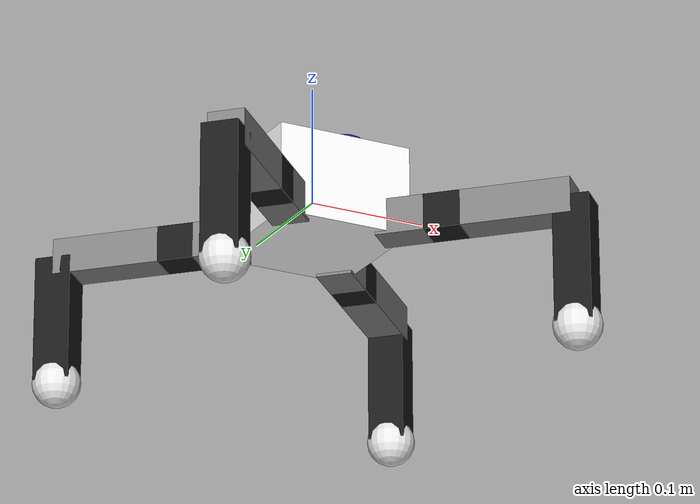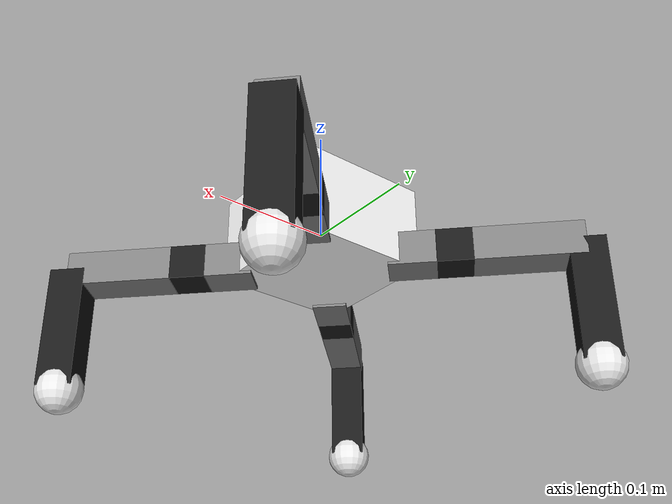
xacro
<?xml version="1.0"?>
<robot name="mekamon"
  xmlns:xacro="http://ros.org/wiki/xacro">

  <!-- units are metres & Kg-->

  <xacro:property name="body_x" value="0.115" />
  <xacro:property name="body_y" value="0.115" />
  <xacro:property name="body_z" value="0.075" />

  <xacro:property name="headradius" value="0.025" />

  <!-- all leg parts can have same width & height, just vary length -->
  <xacro:property name="legwidth" value="0.03" />
  <xacro:property name="legheight" value="0.03" />
  <xacro:property name="hiplength" value="0.04" />
  <!-- from socket to hip joint -->
  <xacro:property name="hiplinklength" value="0.03" />
  <!-- link from hip to thigh -->
  <xacro:property name="thighlength" value="0.09" />
  <!-- from thigh joint to knee joint -->
  <xacro:property name="foreleglength" value="0.105" />
  <!-- from knee joint to foot -->
  <xacro:property name="footradius" value="0.02" />
  <!-- foot sphere -->

  <xacro:property name="pi" value="3.1415" />

  <material name="body">
    <color rgba="1.0 1.0 1.0 1"/>
  </material>

  <material name="head">
    <color rgba="0.1 0.1 0.9 1"/>
  </material>

  <material name="hip">
    <color rgba="0.5 0.5 0.5 1"/>
  </material>

  <material name="hiplink">
    <color rgba="0.1 0.1 0.1 1"/>
  </material>

  <material name="thigh">
    <color rgba="0.5 0.5 0.5 1"/>
  </material>

  <material name="foreleg">
    <color rgba="0.1 0.1 0.1 1"/>
  </material>

  <material name="foot">
    <color rgba="0.9 0.9 0.9 0.9"/>
  </material>

  <!-- Standard moment of inertia tensor for solid sphere -->
  <xacro:macro name="sphere_inertial" params="mass radius">
    <inertial>
      <mass value="${mass}" />
      <inertia ixx="${0.4 * mass * radius * radius}" ixy="0.0" ixz="0.0" iyy="${0.4 * mass * radius * radius}" iyz="0.0" izz="${0.4 * mass * radius * radius}" />
    </inertial>
  </xacro:macro>

  <!-- Standard moment of inertia tensor for solid cuboid -->
  <xacro:macro name="box_inertial" params="mass x y z">
    <inertial>
      <mass value="${mass}" />
      <inertia ixx="${0.0833333 * mass * (y*y + z*z)}" ixy="0.0" ixz="0.0" iyy="${0.0833333 * mass * (x*x + z*z)}" iyz="0.0" izz="${0.0833333 * mass * (x*x + y*y)}" />
    </inertial>
  </xacro:macro>

  <!-- base coordinate frame link is not a physical object -->
  <link name="base_link"/>

  <!-- base link needs a fixed joint to first real link -->
  <joint name="base_link_fixedjoint" type="fixed">
    <parent link="base_link"/>
    <child link="body"/>
    <origin xyz="0.0 0.0 0.0" rpy="0.0 0.0 0.0"/>
  </joint>

  <!-- central body (first real link) -->
  <link name="body">
    <visual>
      <geometry>
        <box size="${body_x} ${body_y} ${body_z}"/>
      </geometry>
      <material name="body"/>
    </visual>
    <collision>
      <geometry>
        <box size="${body_x} ${body_y} ${body_z}"/>
      </geometry>
    </collision>
    <xacro:box_inertial mass="0.5" x="${body_x}" y="${body_y}" z="${body_z}"/>
  </link>

  <!-- Head -->
  <link name="head">
    <visual>
      <geometry>
        <sphere radius="${headradius}"/>
      </geometry>
      <material name="head"/>
    </visual>
    <collision>
      <geometry>
        <sphere radius="${headradius}"/>
      </geometry>
    </collision>
    <xacro:sphere_inertial mass="0.01" radius="${headradius}"/>
  </link>

  <!-- body-to-head static joint -->
  <joint name="body_to_head" type="fixed">
    <parent link="body"/>
    <child link="head"/>
    <origin xyz="0.03 0.00 0.04" />
  </joint>

  <gazebo>
    <plugin name="gazebo_ros_control" filename="libgazebo_ros_control.so">
      <robotNamespace>/mekamon</robotNamespace>
    </plugin>
  </gazebo>

  <!-- Leg builder macro
  arg 'prefix' is link name prefix.
  args 'reflect' used in leg placement. -->
  <xacro:macro name="leg" params="prefix reflect_x reflect_y hipangle">

    <!-- body-to-hip static joint -->
    <joint name="body_to_${prefix}_hip" type="fixed">
      <parent link="body"/>
      <child link="${prefix}_hip"/>
      <!-- Where this joint attaches to the parent link,
      relative to previous joint origin -->
      <origin xyz="${reflect_x*0.04} ${reflect_y*0.04} -0.025" rpy="0 0 ${pi/4 + hipangle*pi/2}"/>
    </joint>

    <!-- Hip, containing servo -->
    <link name="${prefix}_hip">
      <visual>
        <geometry>
          <!--length, width, height-->
          <box size="${hiplength} ${legwidth} ${legheight}"/>
        </geometry>
        <!-- Where we want the link centre to be, relative to the joint? -->
        <origin xyz="${hiplength/2} 0 0" rpy="0 0 0"/>
        <material name="hip"/>
      </visual>
      <collision>
        <!--same as visual geometry -->
        <geometry>
          <box size="${hiplength} ${legwidth} ${legheight}"/>
        </geometry>
        <!--same as visual geometry -->
        <origin xyz="${hiplength/2} 0 0" rpy="0 0 0"/>
      </collision>
      <xacro:box_inertial mass="0.02" x="${hiplength}" y="${legwidth}" z="${legheight}" />
    </link>

    <!-- hip-to-hiplink joint -->
    <joint name="${prefix}_hip_joint" type="revolute">
      <axis xyz="0 0 1"/>
      <limit effort="1000.0" lower="-${pi/3}" upper="${pi/3}" velocity="0.5"/>
      <!-- Where this joint attaches to the parent link,
      relative to previous joint origin -->
      <origin rpy="0 0 0" xyz="${hiplength} 0 0"/>
      <parent link="${prefix}_hip"/>
      <child link="${prefix}_hiplink"/>
    </joint>

    <!-- Hiplink - small passive right-angle link -->
    <link name="${prefix}_hiplink">
      <visual>
        <geometry>
          <box size="${hiplinklength} ${legwidth} ${legheight}"/>
        </geometry>
        <origin xyz="${hiplinklength/2} 0 0" rpy="0 0 0"/>
        <material name="hiplink"/>
      </visual>
      <collision>
        <geometry>
          <box size="${hiplinklength} ${legwidth} ${legheight}"/>
        </geometry>
        <origin xyz="${hiplinklength/2} 0 0" rpy="0 0 0"/>
      </collision>
      <xacro:box_inertial mass="0.01" x="${hiplinklength}" y="${legwidth}" z="${legheight}" />
    </link>

    <!-- hiplink-to-thigh joint -->
    <joint name="${prefix}_hiplink_joint" type="revolute">
      <axis xyz="0 1 0"/>
      <limit effort="1000.0" lower="-1.396" upper="1.484" velocity="0.5"/>
      <!-- Where this joint attaches to the parent link,
      relative to previous joint origin -->
      <origin rpy="0 0 0" xyz="${hiplinklength} 0 0"/>
      <parent link="${prefix}_hiplink"/>
      <child link="${prefix}_thigh"/>
    </joint>

    <!-- Thigh -->
    <link name="${prefix}_thigh">
      <visual>
        <geometry>
          <box size="${thighlength} ${legwidth} ${legheight}"/>
        </geometry>
        <origin xyz="${thighlength/2} 0 0" rpy="0 0 0"/>
        <material name="thigh"/>
      </visual>
      <collision>
        <geometry>
          <box size="${thighlength} ${legwidth} ${legheight}"/>
        </geometry>
        <origin xyz="${thighlength/2} 0 0" rpy="0 0 0"/>
      </collision>
      <xacro:box_inertial mass="0.05" x="${thighlength}" y="${legwidth}" z="${legheight}" />
    </link>

    <!-- Knee, thigh-to-foreleg joint -->
    <joint name="${prefix}_knee_joint" type="revolute">
      <axis xyz="0 1 0"/>
      <limit effort="1000.0" lower="-1.169" upper="1.274" velocity="0.5"/>
      <!-- Where this joint attaches to the parent link,
      relative to previous joint origin -->
      <origin rpy="0 0 0" xyz="${thighlength} 0 0"/>
      <parent link="${prefix}_thigh"/>
      <child link="${prefix}_foreleg"/>
    </joint>

    <!-- Foreleg -->
    <link name="${prefix}_foreleg">
      <visual>
        <geometry>
          <box size="${foreleglength} ${legwidth} ${legheight}"/>
        </geometry>
        <!-- translation of origin is relative to pre-rotation frame,
        so x-trans is done as z-trans-->
        <origin rpy="0 ${pi/2} 0" xyz="0 0 -${foreleglength/2}" />
        <material name="foreleg"/>
      </visual>
      <collision>
        <geometry>
          <box size="${foreleglength} ${legwidth} ${legheight}"/>
        </geometry>
        <origin rpy="0 ${pi/2} 0" xyz="0 0 -${foreleglength/2}" />
      </collision>
      <xacro:box_inertial mass="0.03" x="${foreleglength}" y="${legwidth}" z="${legheight}" />
    </link>

    <!-- Foreleg to Foot static joint -->
    <joint name="${prefix}_ankle" type="fixed">
      <parent link="${prefix}_foreleg"/>
      <child link="${prefix}_foot"/>
      <!-- Where this joint attaches to the parent link,
      relative to previous joint origin -->
      <origin xyz="0 0 -${foreleglength}" rpy="0 0 0"/>
    </joint>

    <!-- Foot -->
    <link name="${prefix}_foot">
      <visual>
        <geometry>
          <sphere radius="${footradius}"/>
        </geometry>
        <origin xyz="0 0 0" rpy="0 0 0"/>
        <material name="foot"/>
      </visual>
      <collision>
        <geometry>
          <sphere radius="${footradius}"/>
        </geometry>
        <origin xyz="0 0 0" rpy="0 0 0"/>
      </collision>
      <xacro:sphere_inertial mass="0.01" radius="${footradius}"/>
    </link>

    <transmission name="${prefix}_hip_joint_trans">
      <type>transmission_interface/SimpleTransmission</type>
      <joint name="${prefix}_hip_joint">
        <hardwareInterface>EffortJointInterface</hardwareInterface>
      </joint>
      <actuator name="${prefix}_hip_joint_motor">
        <mechanicalReduction>1</mechanicalReduction>
      </actuator>
    </transmission>

    <transmission name="${prefix}_hiplink_joint_trans">
      <type>transmission_interface/SimpleTransmission</type>
      <joint name="${prefix}_hiplink_joint">
        <hardwareInterface>EffortJointInterface</hardwareInterface>
      </joint>
      <actuator name="${prefix}_hiplink_joint_motor">
        <mechanicalReduction>1</mechanicalReduction>
      </actuator>
    </transmission>

    <transmission name="${prefix}_knee_joint_trans">
      <type>transmission_interface/SimpleTransmission</type>
      <joint name="${prefix}_knee_joint">
        <hardwareInterface>EffortJointInterface</hardwareInterface>
      </joint>
      <actuator name="${prefix}_knee_joint_motor">
        <mechanicalReduction>1</mechanicalReduction>
      </actuator>
    </transmission>

  </xacro:macro>

  <!-- instantiate legs -->

  <xacro:leg prefix="fl" reflect_x="1" reflect_y="1" hipangle="0" />
  <xacro:leg prefix="fr" reflect_x="1" reflect_y="-1" hipangle="3" />
  <xacro:leg prefix="bl" reflect_x="-1" reflect_y="1" hipangle="1" />
  <xacro:leg prefix="br" reflect_x="-1" reflect_y="-1" hipangle="2" />

</robot>
